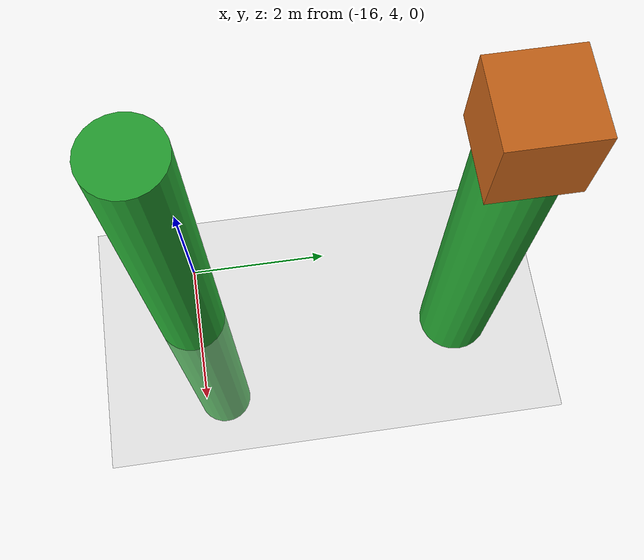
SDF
<sdf version="1.7">
 <world name="default">
  <model name="ground_plane">
   <static>1</static>
   <link name="link">
    <collision name="collision">
     <geometry><plane><normal>0 0 1</normal><size>100 100</size></plane></geometry>
     <surface>
      <contact><collide_bitmask>65535</collide_bitmask></contact>
      <friction><ode><mu>100</mu><mu2>50</mu2></ode></friction>
     </surface>
    </collision>
    <visual name="visual">
     <cast_shadows>0</cast_shadows>
     <geometry><plane><normal>0 0 1</normal><size>100 100</size></plane></geometry>
     <material>
      <script><uri>file://media/materials/scripts/gazebo.material</uri><name>Gazebo/Grey</name></script>
     </material>
    </visual>
   </link>
  </model>
  <model name="unit_cylinder_green_2_clone_2">
   <link name="link">
    <inertial>
     <mass>1</mass>
     <inertia><ixx>0.145833</ixx><ixy>0</ixy><ixz>0</ixz><iyy>0.145833</iyy><iyz>0</iyz><izz>0.125</izz></inertia>
    </inertial>
    <visual name="visual">
     <geometry><cylinder><radius>0.5</radius><length>10</length></cylinder></geometry>
     <material>
      <script><name>Gazebo/Green</name><uri>file://media/materials/scripts/gazebo.material</uri></script>
      <shader type="pixel"><normal_map>__default__</normal_map></shader>
      <ambient>0 1 0.3 1</ambient>
      <diffuse>0.7 0.7 0.7 1</diffuse>
      <specular>0.01 0.01 0.01 1</specular>
      <emissive>0 0 0 1</emissive>
     </material>
    </visual>
    <collision name="collision">
     <geometry><cylinder><radius>0.5</radius><length>5</length></cylinder></geometry>
     <surface>
      <friction>
       <ode><mu>1</mu><mu2>1</mu2><fdir1>0 0 0</fdir1><slip1>0</slip1><slip2>0</slip2></ode>
       <torsional>
        <coefficient>1</coefficient>
        <patch_radius>0</patch_radius>
        <surface_radius>0</surface_radius>
        <use_patch_radius>1</use_patch_radius>
        <ode><slip>0</slip></ode>
       </torsional>
      </friction>
      <bounce><restitution_coefficient>0</restitution_coefficient><threshold>1e+06</threshold></bounce>
      <contact>
       <collide_without_contact>0</collide_without_contact>
       <collide_without_contact_bitmask>1</collide_without_contact_bitmask>
       <collide_bitmask>1</collide_bitmask>
       <ode>
        <soft_cfm>0</soft_cfm>
        <soft_erp>0.2</soft_erp>
        <kp>1e+13</kp>
        <kd>1</kd>
        <max_vel>0.01</max_vel>
        <min_depth>0</min_depth>
       </ode>
       <bullet>
        <split_impulse>1</split_impulse>
        <split_impulse_penetration_threshold>-0.01</split_impulse_penetration_threshold>
        <soft_cfm>0</soft_cfm>
        <soft_erp>0.2</soft_erp>
        <kp>1e+13</kp>
        <kd>1</kd>
       </bullet>
      </contact>
     </surface>
    </collision>
   </link>
   <static>1</static>
   <pose>-15.2558 3.89139 0 0 -0 0</pose>
  </model>
  <model name="unit_cylinder_green_2_clone_clone_3_clone_0_clone_0_clone_14">
   <link name="link">
    <inertial>
     <mass>1</mass>
     <inertia><ixx>0.145833</ixx><ixy>0</ixy><ixz>0</ixz><iyy>0.145833</iyy><iyz>0</iyz><izz>0.125</izz></inertia>
    </inertial>
    <visual name="visual">
     <geometry><cylinder><radius>0.5</radius><length>5</length></cylinder></geometry>
     <material>
      <script><name>Gazebo/Green</name><uri>file://media/materials/scripts/gazebo.material</uri></script>
      <shader type="pixel"><normal_map>__default__</normal_map></shader>
      <ambient>0 1 0.3 1</ambient>
      <diffuse>0.7 0.7 0.7 1</diffuse>
      <specular>0.01 0.01 0.01 1</specular>
      <emissive>0 0 0 1</emissive>
     </material>
    </visual>
    <collision name="collision">
     <geometry><cylinder><radius>0.5</radius><length>5</length></cylinder></geometry>
     <surface>
      <friction>
       <ode><mu>1</mu><mu2>1</mu2><fdir1>0 0 0</fdir1><slip1>0</slip1><slip2>0</slip2></ode>
       <torsional>
        <coefficient>1</coefficient>
        <patch_radius>0</patch_radius>
        <surface_radius>0</surface_radius>
        <use_patch_radius>1</use_patch_radius>
        <ode><slip>0</slip></ode>
       </torsional>
      </friction>
      <bounce><restitution_coefficient>0</restitution_coefficient><threshold>1e+06</threshold></bounce>
      <contact>
       <collide_without_contact>0</collide_without_contact>
       <collide_without_contact_bitmask>1</collide_without_contact_bitmask>
       <collide_bitmask>1</collide_bitmask>
       <ode>
        <soft_cfm>0</soft_cfm>
        <soft_erp>0.2</soft_erp>
        <kp>1e+13</kp>
        <kd>1</kd>
        <max_vel>0.01</max_vel>
        <min_depth>0</min_depth>
       </ode>
       <bullet>
        <split_impulse>1</split_impulse>
        <split_impulse_penetration_threshold>-0.01</split_impulse_penetration_threshold>
        <soft_cfm>0</soft_cfm>
        <soft_erp>0.2</soft_erp>
        <kp>1e+13</kp>
        <kd>1</kd>
       </bullet>
      </contact>
     </surface>
    </collision>
   </link>
   <link name="link_3">
    <inertial>
     <mass>1</mass>
     <inertia>
      <ixx>0.166667</ixx>
      <ixy>0</ixy>
      <ixz>0</ixz>
      <iyy>0.166667</iyy>
      <iyz>0</iyz>
      <izz>0.166667</izz>
     </inertia>
    </inertial>
    <pose>0 0 3 0 -0 0.000935</pose>
    <visual name="visual">
     <geometry><box><size>1 1 1</size></box></geometry>
     <material>
      <lighting>1</lighting>
      <script><uri>file://media/materials/scripts/gazebo.material</uri><name>Gazebo/Grey</name></script>
      <shader type="pixel"><normal_map>__default__</normal_map></shader>
      <ambient>0.8 0.4 0.1 1</ambient>
      <diffuse>0.7 0.7 0.7 1</diffuse>
      <specular>0.01 0.01 0.01 1</specular>
      <emissive>0 0 0 1</emissive>
     </material>
    </visual>
    <collision name="collision">
     <geometry><box><size>1 1 1</size></box></geometry>
     <surface>
      <friction>
       <ode><mu>1</mu><mu2>1</mu2><fdir1>0 0 0</fdir1><slip1>0</slip1><slip2>0</slip2></ode>
       <torsional>
        <coefficient>1</coefficient>
        <patch_radius>0</patch_radius>
        <surface_radius>0</surface_radius>
        <use_patch_radius>1</use_patch_radius>
        <ode><slip>0</slip></ode>
       </torsional>
      </friction>
      <bounce><restitution_coefficient>0</restitution_coefficient><threshold>1e+06</threshold></bounce>
      <contact>
       <collide_without_contact>0</collide_without_contact>
       <collide_without_contact_bitmask>1</collide_without_contact_bitmask>
       <collide_bitmask>1</collide_bitmask>
       <ode>
        <soft_cfm>0</soft_cfm>
        <soft_erp>0.2</soft_erp>
        <kp>1e+13</kp>
        <kd>1</kd>
        <max_vel>0.01</max_vel>
        <min_depth>0</min_depth>
       </ode>
       <bullet>
        <split_impulse>1</split_impulse>
        <split_impulse_penetration_threshold>-0.01</split_impulse_penetration_threshold>
        <soft_cfm>0</soft_cfm>
        <soft_erp>0.2</soft_erp>
        <kp>1e+13</kp>
        <kd>1</kd>
       </bullet>
      </contact>
     </surface>
    </collision>
   </link>
   <static>1</static>
   <pose>-14.7261 7.81104 2.49999 0 0 -0.000935</pose>
  </model>
 </world>
</sdf>
